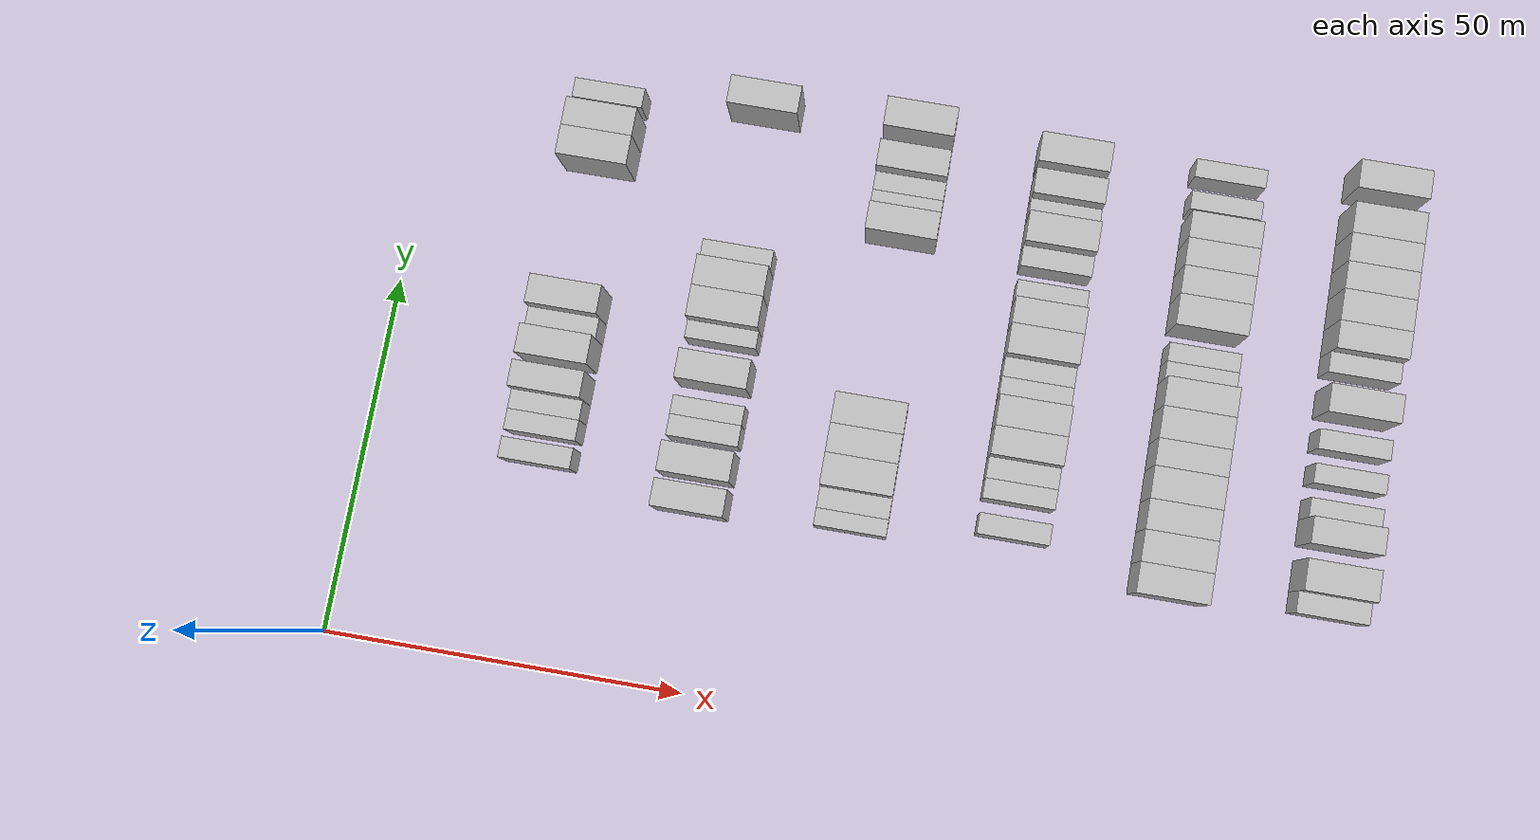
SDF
<sdf version="1.6">
 <world name="default">
  <model name="building_105">
   <static>1</static>
   <pose>25.0000 28.7900 0 0.000000 0.000000 0.000000</pose>
   <link name="link">
    <pose>0 0 3.00 0 0 0</pose>
    <collision name="collision"><geometry><box><size>10.0000 2.9071 6.0000</size></box></geometry></collision>
    <visual name="visual">
     <cast_shadows>0</cast_shadows>
     <geometry><box><size>10.0000 2.9071 6.0000</size></box></geometry>
     <material>
      <script>
       <uri>model://HANNAS_wall/materials/scripts</uri>
       <uri>model://HANNAS_wall/materials/textures</uri>
       <name>vrc/HANNAS_wall</name>
      </script>
     </material>
    </visual>
   </link>
  </model>
  <model name="building_106">
   <static>1</static>
   <pose>25.0000 32.6927 0 0.000000 0.000000 0.000000</pose>
   <link name="link">
    <pose>0 0 3.00 0 0 0</pose>
    <collision name="collision"><geometry><box><size>10.0000 2.8984 6.0000</size></box></geometry></collision>
    <visual name="visual">
     <cast_shadows>0</cast_shadows>
     <geometry><box><size>10.0000 2.8984 6.0000</size></box></geometry>
     <material>
      <script>
       <uri>model://HANNAS_wall/materials/scripts</uri>
       <uri>model://HANNAS_wall/materials/textures</uri>
       <name>vrc/HANNAS_wall</name>
      </script>
     </material>
    </visual>
   </link>
  </model>
  <model name="building_107">
   <static>1</static>
   <pose>25.0000 35.5156 0 0.000000 0.000000 0.000000</pose>
   <link name="link">
    <pose>0 0 3.00 0 0 0</pose>
    <collision name="collision"><geometry><box><size>10.0000 2.7473 6.0000</size></box></geometry></collision>
    <visual name="visual">
     <cast_shadows>0</cast_shadows>
     <geometry><box><size>10.0000 2.7473 6.0000</size></box></geometry>
     <material>
      <script>
       <uri>model://HANNAS_wall/materials/scripts</uri>
       <uri>model://HANNAS_wall/materials/textures</uri>
       <name>vrc/HANNAS_wall</name>
      </script>
     </material>
    </visual>
   </link>
  </model>
  <model name="building_108">
   <static>1</static>
   <pose>25.0000 38.7228 0 0.000000 0.000000 0.000000</pose>
   <link name="link">
    <pose>0 0 4.50 0 0 0</pose>
    <collision name="collision"><geometry><box><size>10.0000 3.6671 9.0000</size></box></geometry></collision>
    <visual name="visual">
     <cast_shadows>0</cast_shadows>
     <geometry><box><size>10.0000 3.6671 9.0000</size></box></geometry>
     <material>
      <script>
       <uri>model://HANNAS_wall/materials/scripts</uri>
       <uri>model://HANNAS_wall/materials/textures</uri>
       <name>vrc/HANNAS_wall</name>
      </script>
     </material>
    </visual>
   </link>
  </model>
  <model name="building_109">
   <static>1</static>
   <pose>25.0000 43.6012 0 0.000000 0.000000 0.000000</pose>
   <link name="link">
    <pose>0 0 4.50 0 0 0</pose>
    <collision name="collision"><geometry><box><size>10.0000 4.0897 9.0000</size></box></geometry></collision>
    <visual name="visual">
     <cast_shadows>0</cast_shadows>
     <geometry><box><size>10.0000 4.0897 9.0000</size></box></geometry>
     <material>
      <script>
       <uri>model://HANNAS_wall/materials/scripts</uri>
       <uri>model://HANNAS_wall/materials/textures</uri>
       <name>vrc/HANNAS_wall</name>
      </script>
     </material>
    </visual>
   </link>
  </model>
  <model name="building_110">
   <static>1</static>
   <pose>25.0000 47.1055 0 0.000000 0.000000 0.000000</pose>
   <link name="link">
    <pose>0 0 3.00 0 0 0</pose>
    <collision name="collision"><geometry><box><size>10.0000 2.9191 6.0000</size></box></geometry></collision>
    <visual name="visual">
     <cast_shadows>0</cast_shadows>
     <geometry><box><size>10.0000 2.9191 6.0000</size></box></geometry>
     <material>
      <script>
       <uri>model://HANNAS_wall/materials/scripts</uri>
       <uri>model://HANNAS_wall/materials/textures</uri>
       <name>vrc/HANNAS_wall</name>
      </script>
     </material>
    </visual>
   </link>
  </model>
  <model name="building_111">
   <static>1</static>
   <pose>25.0000 50.5919 0 0.000000 0.000000 0.000000</pose>
   <link name="link">
    <pose>0 0 4.50 0 0 0</pose>
    <collision name="collision"><geometry><box><size>10.0000 4.0537 9.0000</size></box></geometry></collision>
    <visual name="visual">
     <cast_shadows>0</cast_shadows>
     <geometry><box><size>10.0000 4.0537 9.0000</size></box></geometry>
     <material>
      <script>
       <uri>model://HANNAS_wall/materials/scripts</uri>
       <uri>model://HANNAS_wall/materials/textures</uri>
       <name>vrc/HANNAS_wall</name>
      </script>
     </material>
    </visual>
   </link>
  </model>
  <model name="building_112">
   <static>1</static>
   <pose>25.0000 71.9134 0 0.000000 0.000000 0.000000</pose>
   <link name="link">
    <pose>0 0 4.50 0 0 0</pose>
    <collision name="collision"><geometry><box><size>10.0000 4.1964 9.0000</size></box></geometry></collision>
    <visual name="visual">
     <cast_shadows>0</cast_shadows>
     <geometry><box><size>10.0000 4.1964 9.0000</size></box></geometry>
     <material>
      <script>
       <uri>model://HANNAS_wall/materials/scripts</uri>
       <uri>model://HANNAS_wall/materials/textures</uri>
       <name>vrc/HANNAS_wall</name>
      </script>
     </material>
    </visual>
   </link>
  </model>
  <model name="building_113">
   <static>1</static>
   <pose>25.0000 76.0172 0 0.000000 0.000000 0.000000</pose>
   <link name="link">
    <pose>0 0 4.50 0 0 0</pose>
    <collision name="collision"><geometry><box><size>10.0000 4.0112 9.0000</size></box></geometry></collision>
    <visual name="visual">
     <cast_shadows>0</cast_shadows>
     <geometry><box><size>10.0000 4.0112 9.0000</size></box></geometry>
     <material>
      <script>
       <uri>model://HANNAS_wall/materials/scripts</uri>
       <uri>model://HANNAS_wall/materials/textures</uri>
       <name>vrc/HANNAS_wall</name>
      </script>
     </material>
    </visual>
   </link>
  </model>
  <model name="building_114">
   <static>1</static>
   <pose>25.0000 80.4273 0 0.000000 0.000000 0.000000</pose>
   <link name="link">
    <pose>0 0 3.00 0 0 0</pose>
    <collision name="collision"><geometry><box><size>10.0000 2.8089 6.0000</size></box></geometry></collision>
    <visual name="visual">
     <cast_shadows>0</cast_shadows>
     <geometry><box><size>10.0000 2.8089 6.0000</size></box></geometry>
     <material>
      <script>
       <uri>model://HANNAS_wall/materials/scripts</uri>
       <uri>model://HANNAS_wall/materials/textures</uri>
       <name>vrc/HANNAS_wall</name>
      </script>
     </material>
    </visual>
   </link>
  </model>
  <model name="building_291">
   <static>1</static>
   <pose>47.0000 26.1158 0 0.000000 0.000000 0.000000</pose>
   <link name="link">
    <pose>0 0 4.50 0 0 0</pose>
    <collision name="collision"><geometry><box><size>10.0000 3.7945 9.0000</size></box></geometry></collision>
    <visual name="visual">
     <cast_shadows>0</cast_shadows>
     <geometry><box><size>10.0000 3.7945 9.0000</size></box></geometry>
     <material>
      <script>
       <uri>model://HANNAS_wall/materials/scripts</uri>
       <uri>model://HANNAS_wall/materials/textures</uri>
       <name>vrc/HANNAS_wall</name>
      </script>
     </material>
    </visual>
   </link>
  </model>
  <model name="building_292">
   <static>1</static>
   <pose>47.0000 31.0976 0 0.000000 0.000000 0.000000</pose>
   <link name="link">
    <pose>0 0 4.50 0 0 0</pose>
    <collision name="collision"><geometry><box><size>10.0000 4.1691 9.0000</size></box></geometry></collision>
    <visual name="visual">
     <cast_shadows>0</cast_shadows>
     <geometry><box><size>10.0000 4.1691 9.0000</size></box></geometry>
     <material>
      <script>
       <uri>model://HANNAS_wall/materials/scripts</uri>
       <uri>model://HANNAS_wall/materials/textures</uri>
       <name>vrc/HANNAS_wall</name>
      </script>
     </material>
    </visual>
   </link>
  </model>
  <model name="building_293">
   <static>1</static>
   <pose>47.0000 35.6731 0 0.000000 0.000000 0.000000</pose>
   <link name="link">
    <pose>0 0 3.00 0 0 0</pose>
    <collision name="collision"><geometry><box><size>10.0000 2.9821 6.0000</size></box></geometry></collision>
    <visual name="visual">
     <cast_shadows>0</cast_shadows>
     <geometry><box><size>10.0000 2.9821 6.0000</size></box></geometry>
     <material>
      <script>
       <uri>model://HANNAS_wall/materials/scripts</uri>
       <uri>model://HANNAS_wall/materials/textures</uri>
       <name>vrc/HANNAS_wall</name>
      </script>
     </material>
    </visual>
   </link>
  </model>
  <model name="building_294">
   <static>1</static>
   <pose>47.0000 38.4921 0 0.000000 0.000000 0.000000</pose>
   <link name="link">
    <pose>0 0 3.00 0 0 0</pose>
    <collision name="collision"><geometry><box><size>10.0000 2.6558 6.0000</size></box></geometry></collision>
    <visual name="visual">
     <cast_shadows>0</cast_shadows>
     <geometry><box><size>10.0000 2.6558 6.0000</size></box></geometry>
     <material>
      <script>
       <uri>model://HANNAS_wall/materials/scripts</uri>
       <uri>model://HANNAS_wall/materials/textures</uri>
       <name>vrc/HANNAS_wall</name>
      </script>
     </material>
    </visual>
   </link>
  </model>
  <model name="building_295">
   <static>1</static>
   <pose>47.0000 43.8760 0 0.000000 0.000000 0.000000</pose>
   <link name="link">
    <pose>0 0 4.50 0 0 0</pose>
    <collision name="collision"><geometry><box><size>10.0000 4.1121 9.0000</size></box></geometry></collision>
    <visual name="visual">
     <cast_shadows>0</cast_shadows>
     <geometry><box><size>10.0000 4.1121 9.0000</size></box></geometry>
     <material>
      <script>
       <uri>model://HANNAS_wall/materials/scripts</uri>
       <uri>model://HANNAS_wall/materials/textures</uri>
       <name>vrc/HANNAS_wall</name>
      </script>
     </material>
    </visual>
   </link>
  </model>
  <model name="building_296">
   <static>1</static>
   <pose>47.0000 49.1877 0 0.000000 0.000000 0.000000</pose>
   <link name="link">
    <pose>0 0 3.00 0 0 0</pose>
    <collision name="collision"><geometry><box><size>10.0000 2.5113 6.0000</size></box></geometry></collision>
    <visual name="visual">
     <cast_shadows>0</cast_shadows>
     <geometry><box><size>10.0000 2.5113 6.0000</size></box></geometry>
     <material>
      <script>
       <uri>model://HANNAS_wall/materials/scripts</uri>
       <uri>model://HANNAS_wall/materials/textures</uri>
       <name>vrc/HANNAS_wall</name>
      </script>
     </material>
    </visual>
   </link>
  </model>
  <model name="building_297">
   <static>1</static>
   <pose>47.0000 52.6473 0 0.000000 0.000000 0.000000</pose>
   <link name="link">
    <pose>0 0 4.50 0 0 0</pose>
    <collision name="collision"><geometry><box><size>10.0000 4.4078 9.0000</size></box></geometry></collision>
    <visual name="visual">
     <cast_shadows>0</cast_shadows>
     <geometry><box><size>10.0000 4.4078 9.0000</size></box></geometry>
     <material>
      <script>
       <uri>model://HANNAS_wall/materials/scripts</uri>
       <uri>model://HANNAS_wall/materials/textures</uri>
       <name>vrc/HANNAS_wall</name>
      </script>
     </material>
    </visual>
   </link>
  </model>
  <model name="building_298">
   <static>1</static>
   <pose>47.0000 56.9803 0 0.000000 0.000000 0.000000</pose>
   <link name="link">
    <pose>0 0 4.50 0 0 0</pose>
    <collision name="collision"><geometry><box><size>10.0000 4.2582 9.0000</size></box></geometry></collision>
    <visual name="visual">
     <cast_shadows>0</cast_shadows>
     <geometry><box><size>10.0000 4.2582 9.0000</size></box></geometry>
     <material>
      <script>
       <uri>model://HANNAS_wall/materials/scripts</uri>
       <uri>model://HANNAS_wall/materials/textures</uri>
       <name>vrc/HANNAS_wall</name>
      </script>
     </material>
    </visual>
   </link>
  </model>
  <model name="building_299">
   <static>1</static>
   <pose>47.0000 60.5583 0 0.000000 0.000000 0.000000</pose>
   <link name="link">
    <pose>0 0 3.00 0 0 0</pose>
    <collision name="collision"><geometry><box><size>10.0000 2.8978 6.0000</size></box></geometry></collision>
    <visual name="visual">
     <cast_shadows>0</cast_shadows>
     <geometry><box><size>10.0000 2.8978 6.0000</size></box></geometry>
     <material>
      <script>
       <uri>model://HANNAS_wall/materials/scripts</uri>
       <uri>model://HANNAS_wall/materials/textures</uri>
       <name>vrc/HANNAS_wall</name>
      </script>
     </material>
    </visual>
   </link>
  </model>
  <model name="building_300">
   <static>1</static>
   <pose>47.0000 82.9995 0 0.000000 0.000000 0.000000</pose>
   <link name="link">
    <pose>0 0 4.50 0 0 0</pose>
    <collision name="collision"><geometry><box><size>10.0000 3.9948 9.0000</size></box></geometry></collision>
    <visual name="visual">
     <cast_shadows>0</cast_shadows>
     <geometry><box><size>10.0000 3.9948 9.0000</size></box></geometry>
     <material>
      <script>
       <uri>model://HANNAS_wall/materials/scripts</uri>
       <uri>model://HANNAS_wall/materials/textures</uri>
       <name>vrc/HANNAS_wall</name>
      </script>
     </material>
    </visual>
   </link>
  </model>
  <model name="building_473">
   <static>1</static>
   <pose>69.0000 26.7193 0 0.000000 0.000000 0.000000</pose>
   <link name="link">
    <pose>0 0 3.00 0 0 0</pose>
    <collision name="collision"><geometry><box><size>10.0000 2.4017 6.0000</size></box></geometry></collision>
    <visual name="visual">
     <cast_shadows>0</cast_shadows>
     <geometry><box><size>10.0000 2.4017 6.0000</size></box></geometry>
     <material>
      <script>
       <uri>model://HANNAS_wall/materials/scripts</uri>
       <uri>model://HANNAS_wall/materials/textures</uri>
       <name>vrc/HANNAS_wall</name>
      </script>
     </material>
    </visual>
   </link>
  </model>
  <model name="building_474">
   <static>1</static>
   <pose>69.0000 29.3890 0 0.000000 0.000000 0.000000</pose>
   <link name="link">
    <pose>0 0 3.00 0 0 0</pose>
    <collision name="collision"><geometry><box><size>10.0000 2.9377 6.0000</size></box></geometry></collision>
    <visual name="visual">
     <cast_shadows>0</cast_shadows>
     <geometry><box><size>10.0000 2.9377 6.0000</size></box></geometry>
     <material>
      <script>
       <uri>model://HANNAS_wall/materials/scripts</uri>
       <uri>model://HANNAS_wall/materials/textures</uri>
       <name>vrc/HANNAS_wall</name>
      </script>
     </material>
    </visual>
   </link>
  </model>
  <model name="building_475">
   <static>1</static>
   <pose>69.0000 33.0893 0 0.000000 0.000000 0.000000</pose>
   <link name="link">
    <pose>0 0 4.50 0 0 0</pose>
    <collision name="collision"><geometry><box><size>10.0000 4.4629 9.0000</size></box></geometry></collision>
    <visual name="visual">
     <cast_shadows>0</cast_shadows>
     <geometry><box><size>10.0000 4.4629 9.0000</size></box></geometry>
     <material>
      <script>
       <uri>model://HANNAS_wall/materials/scripts</uri>
       <uri>model://HANNAS_wall/materials/textures</uri>
       <name>vrc/HANNAS_wall</name>
      </script>
     </material>
    </visual>
   </link>
  </model>
  <model name="building_476">
   <static>1</static>
   <pose>69.0000 37.3392 0 0.000000 0.000000 0.000000</pose>
   <link name="link">
    <pose>0 0 4.50 0 0 0</pose>
    <collision name="collision"><geometry><box><size>10.0000 4.0368 9.0000</size></box></geometry></collision>
    <visual name="visual">
     <cast_shadows>0</cast_shadows>
     <geometry><box><size>10.0000 4.0368 9.0000</size></box></geometry>
     <material>
      <script>
       <uri>model://HANNAS_wall/materials/scripts</uri>
       <uri>model://HANNAS_wall/materials/textures</uri>
       <name>vrc/HANNAS_wall</name>
      </script>
     </material>
    </visual>
   </link>
  </model>
  <model name="building_477">
   <static>1</static>
   <pose>69.0000 41.5137 0 0.000000 0.000000 0.000000</pose>
   <link name="link">
    <pose>0 0 4.50 0 0 0</pose>
    <collision name="collision"><geometry><box><size>10.0000 4.3124 9.0000</size></box></geometry></collision>
    <visual name="visual">
     <cast_shadows>0</cast_shadows>
     <geometry><box><size>10.0000 4.3124 9.0000</size></box></geometry>
     <material>
      <script>
       <uri>model://HANNAS_wall/materials/scripts</uri>
       <uri>model://HANNAS_wall/materials/textures</uri>
       <name>vrc/HANNAS_wall</name>
      </script>
     </material>
    </visual>
   </link>
  </model>
  <model name="building_478">
   <static>1</static>
   <pose>69.0000 68.5739 0 0.000000 0.000000 0.000000</pose>
   <link name="link">
    <pose>0 0 4.50 0 0 0</pose>
    <collision name="collision"><geometry><box><size>10.0000 3.9360 9.0000</size></box></geometry></collision>
    <visual name="visual">
     <cast_shadows>0</cast_shadows>
     <geometry><box><size>10.0000 3.9360 9.0000</size></box></geometry>
     <material>
      <script>
       <uri>model://HANNAS_wall/materials/scripts</uri>
       <uri>model://HANNAS_wall/materials/textures</uri>
       <name>vrc/HANNAS_wall</name>
      </script>
     </material>
    </visual>
   </link>
  </model>
  <model name="building_479">
   <static>1</static>
   <pose>69.0000 71.7526 0 0.000000 0.000000 0.000000</pose>
   <link name="link">
    <pose>0 0 3.00 0 0 0</pose>
    <collision name="collision"><geometry><box><size>10.0000 2.4214 6.0000</size></box></geometry></collision>
    <visual name="visual">
     <cast_shadows>0</cast_shadows>
     <geometry><box><size>10.0000 2.4214 6.0000</size></box></geometry>
     <material>
      <script>
       <uri>model://HANNAS_wall/materials/scripts</uri>
       <uri>model://HANNAS_wall/materials/textures</uri>
       <name>vrc/HANNAS_wall</name>
      </script>
     </material>
    </visual>
   </link>
  </model>
  <model name="building_480">
   <static>1</static>
   <pose>69.0000 74.2943 0 0.000000 0.000000 0.000000</pose>
   <link name="link">
    <pose>0 0 3.00 0 0 0</pose>
    <collision name="collision"><geometry><box><size>10.0000 2.6619 6.0000</size></box></geometry></collision>
    <visual name="visual">
     <cast_shadows>0</cast_shadows>
     <geometry><box><size>10.0000 2.6619 6.0000</size></box></geometry>
     <material>
      <script>
       <uri>model://HANNAS_wall/materials/scripts</uri>
       <uri>model://HANNAS_wall/materials/textures</uri>
       <name>vrc/HANNAS_wall</name>
      </script>
     </material>
    </visual>
   </link>
  </model>
  <model name="building_481">
   <static>1</static>
   <pose>69.0000 77.5490 0 0.000000 0.000000 0.000000</pose>
   <link name="link">
    <pose>0 0 4.50 0 0 0</pose>
    <collision name="collision"><geometry><box><size>10.0000 3.8476 9.0000</size></box></geometry></collision>
    <visual name="visual">
     <cast_shadows>0</cast_shadows>
     <geometry><box><size>10.0000 3.8476 9.0000</size></box></geometry>
     <material>
      <script>
       <uri>model://HANNAS_wall/materials/scripts</uri>
       <uri>model://HANNAS_wall/materials/textures</uri>
       <name>vrc/HANNAS_wall</name>
      </script>
     </material>
    </visual>
   </link>
  </model>
  <model name="building_482">
   <static>1</static>
   <pose>69.0000 83.5803 0 0.000000 0.000000 0.000000</pose>
   <link name="link">
    <pose>0 0 4.50 0 0 0</pose>
    <collision name="collision"><geometry><box><size>10.0000 4.2150 9.0000</size></box></geometry></collision>
    <visual name="visual">
     <cast_shadows>0</cast_shadows>
     <geometry><box><size>10.0000 4.2150 9.0000</size></box></geometry>
     <material>
      <script>
       <uri>model://HANNAS_wall/materials/scripts</uri>
       <uri>model://HANNAS_wall/materials/textures</uri>
       <name>vrc/HANNAS_wall</name>
      </script>
     </material>
    </visual>
   </link>
  </model>
  <model name="building_658">
   <static>1</static>
   <pose>91.0000 29.5985 0 0.000000 0.000000 0.000000</pose>
   <link name="link">
    <pose>0 0 3.00 0 0 0</pose>
    <collision name="collision"><geometry><box><size>10.0000 2.9148 6.0000</size></box></geometry></collision>
    <visual name="visual">
     <cast_shadows>0</cast_shadows>
     <geometry><box><size>10.0000 2.9148 6.0000</size></box></geometry>
     <material>
      <script>
       <uri>model://HANNAS_wall/materials/scripts</uri>
       <uri>model://HANNAS_wall/materials/textures</uri>
       <name>vrc/HANNAS_wall</name>
      </script>
     </material>
    </visual>
   </link>
  </model>
  <model name="building_659">
   <static>1</static>
   <pose>91.0000 34.4473 0 0.000000 0.000000 0.000000</pose>
   <link name="link">
    <pose>0 0 3.00 0 0 0</pose>
    <collision name="collision"><geometry><box><size>10.0000 2.7828 6.0000</size></box></geometry></collision>
    <visual name="visual">
     <cast_shadows>0</cast_shadows>
     <geometry><box><size>10.0000 2.7828 6.0000</size></box></geometry>
     <material>
      <script>
       <uri>model://HANNAS_wall/materials/scripts</uri>
       <uri>model://HANNAS_wall/materials/textures</uri>
       <name>vrc/HANNAS_wall</name>
      </script>
     </material>
    </visual>
   </link>
  </model>
  <model name="building_660">
   <static>1</static>
   <pose>91.0000 37.3197 0 0.000000 0.000000 0.000000</pose>
   <link name="link">
    <pose>0 0 3.00 0 0 0</pose>
    <collision name="collision"><geometry><box><size>10.0000 2.9619 6.0000</size></box></geometry></collision>
    <visual name="visual">
     <cast_shadows>0</cast_shadows>
     <geometry><box><size>10.0000 2.9619 6.0000</size></box></geometry>
     <material>
      <script>
       <uri>model://HANNAS_wall/materials/scripts</uri>
       <uri>model://HANNAS_wall/materials/textures</uri>
       <name>vrc/HANNAS_wall</name>
      </script>
     </material>
    </visual>
   </link>
  </model>
  <model name="building_661">
   <static>1</static>
   <pose>91.0000 40.8022 0 0.000000 0.000000 0.000000</pose>
   <link name="link">
    <pose>0 0 4.50 0 0 0</pose>
    <collision name="collision"><geometry><box><size>10.0000 4.0031 9.0000</size></box></geometry></collision>
    <visual name="visual">
     <cast_shadows>0</cast_shadows>
     <geometry><box><size>10.0000 4.0031 9.0000</size></box></geometry>
     <material>
      <script>
       <uri>model://HANNAS_wall/materials/scripts</uri>
       <uri>model://HANNAS_wall/materials/textures</uri>
       <name>vrc/HANNAS_wall</name>
      </script>
     </material>
    </visual>
   </link>
  </model>
  <model name="building_662">
   <static>1</static>
   <pose>91.0000 44.9374 0 0.000000 0.000000 0.000000</pose>
   <link name="link">
    <pose>0 0 4.50 0 0 0</pose>
    <collision name="collision"><geometry><box><size>10.0000 4.2671 9.0000</size></box></geometry></collision>
    <visual name="visual">
     <cast_shadows>0</cast_shadows>
     <geometry><box><size>10.0000 4.2671 9.0000</size></box></geometry>
     <material>
      <script>
       <uri>model://HANNAS_wall/materials/scripts</uri>
       <uri>model://HANNAS_wall/materials/textures</uri>
       <name>vrc/HANNAS_wall</name>
      </script>
     </material>
    </visual>
   </link>
  </model>
  <model name="building_663">
   <static>1</static>
   <pose>91.0000 48.5346 0 0.000000 0.000000 0.000000</pose>
   <link name="link">
    <pose>0 0 3.00 0 0 0</pose>
    <collision name="collision"><geometry><box><size>10.0000 2.9274 6.0000</size></box></geometry></collision>
    <visual name="visual">
     <cast_shadows>0</cast_shadows>
     <geometry><box><size>10.0000 2.9274 6.0000</size></box></geometry>
     <material>
      <script>
       <uri>model://HANNAS_wall/materials/scripts</uri>
       <uri>model://HANNAS_wall/materials/textures</uri>
       <name>vrc/HANNAS_wall</name>
      </script>
     </material>
    </visual>
   </link>
  </model>
  <model name="building_664">
   <static>1</static>
   <pose>91.0000 51.3972 0 0.000000 0.000000 0.000000</pose>
   <link name="link">
    <pose>0 0 3.00 0 0 0</pose>
    <collision name="collision"><geometry><box><size>10.0000 2.7978 6.0000</size></box></geometry></collision>
    <visual name="visual">
     <cast_shadows>0</cast_shadows>
     <geometry><box><size>10.0000 2.7978 6.0000</size></box></geometry>
     <material>
      <script>
       <uri>model://HANNAS_wall/materials/scripts</uri>
       <uri>model://HANNAS_wall/materials/textures</uri>
       <name>vrc/HANNAS_wall</name>
      </script>
     </material>
    </visual>
   </link>
  </model>
  <model name="building_665">
   <static>1</static>
   <pose>91.0000 54.9342 0 0.000000 0.000000 0.000000</pose>
   <link name="link">
    <pose>0 0 4.50 0 0 0</pose>
    <collision name="collision"><geometry><box><size>10.0000 4.2761 9.0000</size></box></geometry></collision>
    <visual name="visual">
     <cast_shadows>0</cast_shadows>
     <geometry><box><size>10.0000 4.2761 9.0000</size></box></geometry>
     <material>
      <script>
       <uri>model://HANNAS_wall/materials/scripts</uri>
       <uri>model://HANNAS_wall/materials/textures</uri>
       <name>vrc/HANNAS_wall</name>
      </script>
     </material>
    </visual>
   </link>
  </model>
  <model name="building_666">
   <static>1</static>
   <pose>91.0000 58.9236 0 0.000000 0.000000 0.000000</pose>
   <link name="link">
    <pose>0 0 4.50 0 0 0</pose>
    <collision name="collision"><geometry><box><size>10.0000 3.7027 9.0000</size></box></geometry></collision>
    <visual name="visual">
     <cast_shadows>0</cast_shadows>
     <geometry><box><size>10.0000 3.7027 9.0000</size></box></geometry>
     <material>
      <script>
       <uri>model://HANNAS_wall/materials/scripts</uri>
       <uri>model://HANNAS_wall/materials/textures</uri>
       <name>vrc/HANNAS_wall</name>
      </script>
     </material>
    </visual>
   </link>
  </model>
  <model name="building_667">
   <static>1</static>
   <pose>91.0000 62.2617 0 0.000000 0.000000 0.000000</pose>
   <link name="link">
    <pose>0 0 3.00 0 0 0</pose>
    <collision name="collision"><geometry><box><size>10.0000 2.9735 6.0000</size></box></geometry></collision>
    <visual name="visual">
     <cast_shadows>0</cast_shadows>
     <geometry><box><size>10.0000 2.9735 6.0000</size></box></geometry>
     <material>
      <script>
       <uri>model://HANNAS_wall/materials/scripts</uri>
       <uri>model://HANNAS_wall/materials/textures</uri>
       <name>vrc/HANNAS_wall</name>
      </script>
     </material>
    </visual>
   </link>
  </model>
  <model name="building_668">
   <static>1</static>
   <pose>91.0000 67.1979 0 0.000000 0.000000 0.000000</pose>
   <link name="link">
    <pose>0 0 3.00 0 0 0</pose>
    <collision name="collision"><geometry><box><size>10.0000 2.8990 6.0000</size></box></geometry></collision>
    <visual name="visual">
     <cast_shadows>0</cast_shadows>
     <geometry><box><size>10.0000 2.8990 6.0000</size></box></geometry>
     <material>
      <script>
       <uri>model://HANNAS_wall/materials/scripts</uri>
       <uri>model://HANNAS_wall/materials/textures</uri>
       <name>vrc/HANNAS_wall</name>
      </script>
     </material>
    </visual>
   </link>
  </model>
  <model name="building_669">
   <static>1</static>
   <pose>91.0000 70.8143 0 0.000000 0.000000 0.000000</pose>
   <link name="link">
    <pose>0 0 4.50 0 0 0</pose>
    <collision name="collision"><geometry><box><size>10.0000 4.3337 9.0000</size></box></geometry></collision>
    <visual name="visual">
     <cast_shadows>0</cast_shadows>
     <geometry><box><size>10.0000 4.3337 9.0000</size></box></geometry>
     <material>
      <script>
       <uri>model://HANNAS_wall/materials/scripts</uri>
       <uri>model://HANNAS_wall/materials/textures</uri>
       <name>vrc/HANNAS_wall</name>
      </script>
     </material>
    </visual>
   </link>
  </model>
  <model name="building_670">
   <static>1</static>
   <pose>91.0000 74.2350 0 0.000000 0.000000 0.000000</pose>
   <link name="link">
    <pose>0 0 3.00 0 0 0</pose>
    <collision name="collision"><geometry><box><size>10.0000 2.5077 6.0000</size></box></geometry></collision>
    <visual name="visual">
     <cast_shadows>0</cast_shadows>
     <geometry><box><size>10.0000 2.5077 6.0000</size></box></geometry>
     <material>
      <script>
       <uri>model://HANNAS_wall/materials/scripts</uri>
       <uri>model://HANNAS_wall/materials/textures</uri>
       <name>vrc/HANNAS_wall</name>
      </script>
     </material>
    </visual>
   </link>
  </model>
  <model name="building_671">
   <static>1</static>
   <pose>91.0000 77.3013 0 0.000000 0.000000 0.000000</pose>
   <link name="link">
    <pose>0 0 4.50 0 0 0</pose>
    <collision name="collision"><geometry><box><size>10.0000 3.6250 9.0000</size></box></geometry></collision>
    <visual name="visual">
     <cast_shadows>0</cast_shadows>
     <geometry><box><size>10.0000 3.6250 9.0000</size></box></geometry>
     <material>
      <script>
       <uri>model://HANNAS_wall/materials/scripts</uri>
       <uri>model://HANNAS_wall/materials/textures</uri>
       <name>vrc/HANNAS_wall</name>
      </script>
     </material>
    </visual>
   </link>
  </model>
  <model name="building_672">
   <static>1</static>
   <pose>91.0000 82.2211 0 0.000000 0.000000 0.000000</pose>
   <link name="link">
    <pose>0 0 4.50 0 0 0</pose>
    <collision name="collision"><geometry><box><size>10.0000 4.2145 9.0000</size></box></geometry></collision>
    <visual name="visual">
     <cast_shadows>0</cast_shadows>
     <geometry><box><size>10.0000 4.2145 9.0000</size></box></geometry>
     <material>
      <script>
       <uri>model://HANNAS_wall/materials/scripts</uri>
       <uri>model://HANNAS_wall/materials/textures</uri>
       <name>vrc/HANNAS_wall</name>
      </script>
     </material>
    </visual>
   </link>
  </model>
  <model name="building_848">
   <static>1</static>
   <pose>113.0000 25.8924 0 0.000000 0.000000 0.000000</pose>
   <link name="link">
    <pose>0 0 4.50 0 0 0</pose>
    <collision name="collision"><geometry><box><size>10.0000 4.2222 9.0000</size></box></geometry></collision>
    <visual name="visual">
     <cast_shadows>0</cast_shadows>
     <geometry><box><size>10.0000 4.2222 9.0000</size></box></geometry>
     <material>
      <script>
       <uri>model://HANNAS_wall/materials/scripts</uri>
       <uri>model://HANNAS_wall/materials/textures</uri>
       <name>vrc/HANNAS_wall</name>
      </script>
     </material>
    </visual>
   </link>
  </model>
  <model name="building_849">
   <static>1</static>
   <pose>113.0000 30.1855 0 0.000000 0.000000 0.000000</pose>
   <link name="link">
    <pose>0 0 4.50 0 0 0</pose>
    <collision name="collision"><geometry><box><size>10.0000 4.3639 9.0000</size></box></geometry></collision>
    <visual name="visual">
     <cast_shadows>0</cast_shadows>
     <geometry><box><size>10.0000 4.3639 9.0000</size></box></geometry>
     <material>
      <script>
       <uri>model://HANNAS_wall/materials/scripts</uri>
       <uri>model://HANNAS_wall/materials/textures</uri>
       <name>vrc/HANNAS_wall</name>
      </script>
     </material>
    </visual>
   </link>
  </model>
  <model name="building_850">
   <static>1</static>
   <pose>113.0000 34.4704 0 0.000000 0.000000 0.000000</pose>
   <link name="link">
    <pose>0 0 4.50 0 0 0</pose>
    <collision name="collision"><geometry><box><size>10.0000 4.2058 9.0000</size></box></geometry></collision>
    <visual name="visual">
     <cast_shadows>0</cast_shadows>
     <geometry><box><size>10.0000 4.2058 9.0000</size></box></geometry>
     <material>
      <script>
       <uri>model://HANNAS_wall/materials/scripts</uri>
       <uri>model://HANNAS_wall/materials/textures</uri>
       <name>vrc/HANNAS_wall</name>
      </script>
     </material>
    </visual>
   </link>
  </model>
  <model name="building_851">
   <static>1</static>
   <pose>113.0000 38.8074 0 0.000000 0.000000 0.000000</pose>
   <link name="link">
    <pose>0 0 4.50 0 0 0</pose>
    <collision name="collision"><geometry><box><size>10.0000 4.4682 9.0000</size></box></geometry></collision>
    <visual name="visual">
     <cast_shadows>0</cast_shadows>
     <geometry><box><size>10.0000 4.4682 9.0000</size></box></geometry>
     <material>
      <script>
       <uri>model://HANNAS_wall/materials/scripts</uri>
       <uri>model://HANNAS_wall/materials/textures</uri>
       <name>vrc/HANNAS_wall</name>
      </script>
     </material>
    </visual>
   </link>
  </model>
  <model name="building_852">
   <static>1</static>
   <pose>113.0000 42.9378 0 0.000000 0.000000 0.000000</pose>
   <link name="link">
    <pose>0 0 4.50 0 0 0</pose>
    <collision name="collision"><geometry><box><size>10.0000 3.7927 9.0000</size></box></geometry></collision>
    <visual name="visual">
     <cast_shadows>0</cast_shadows>
     <geometry><box><size>10.0000 3.7927 9.0000</size></box></geometry>
     <material>
      <script>
       <uri>model://HANNAS_wall/materials/scripts</uri>
       <uri>model://HANNAS_wall/materials/textures</uri>
       <name>vrc/HANNAS_wall</name>
      </script>
     </material>
    </visual>
   </link>
  </model>
  <model name="building_853">
   <static>1</static>
   <pose>113.0000 47.0565 0 0.000000 0.000000 0.000000</pose>
   <link name="link">
    <pose>0 0 4.50 0 0 0</pose>
    <collision name="collision"><geometry><box><size>10.0000 4.4446 9.0000</size></box></geometry></collision>
    <visual name="visual">
     <cast_shadows>0</cast_shadows>
     <geometry><box><size>10.0000 4.4446 9.0000</size></box></geometry>
     <material>
      <script>
       <uri>model://HANNAS_wall/materials/scripts</uri>
       <uri>model://HANNAS_wall/materials/textures</uri>
       <name>vrc/HANNAS_wall</name>
      </script>
     </material>
    </visual>
   </link>
  </model>
  <model name="building_854">
   <static>1</static>
   <pose>113.0000 51.3348 0 0.000000 0.000000 0.000000</pose>
   <link name="link">
    <pose>0 0 4.50 0 0 0</pose>
    <collision name="collision"><geometry><box><size>10.0000 4.1121 9.0000</size></box></geometry></collision>
    <visual name="visual">
     <cast_shadows>0</cast_shadows>
     <geometry><box><size>10.0000 4.1121 9.0000</size></box></geometry>
     <material>
      <script>
       <uri>model://HANNAS_wall/materials/scripts</uri>
       <uri>model://HANNAS_wall/materials/textures</uri>
       <name>vrc/HANNAS_wall</name>
      </script>
     </material>
    </visual>
   </link>
  </model>
  <model name="building_855">
   <static>1</static>
   <pose>113.0000 54.6623 0 0.000000 0.000000 0.000000</pose>
   <link name="link">
    <pose>0 0 3.00 0 0 0</pose>
    <collision name="collision"><geometry><box><size>10.0000 2.5429 6.0000</size></box></geometry></collision>
    <visual name="visual">
     <cast_shadows>0</cast_shadows>
     <geometry><box><size>10.0000 2.5429 6.0000</size></box></geometry>
     <material>
      <script>
       <uri>model://HANNAS_wall/materials/scripts</uri>
       <uri>model://HANNAS_wall/materials/textures</uri>
       <name>vrc/HANNAS_wall</name>
      </script>
     </material>
    </visual>
   </link>
  </model>
  <model name="building_856">
   <static>1</static>
   <pose>113.0000 57.2573 0 0.000000 0.000000 0.000000</pose>
   <link name="link">
    <pose>0 0 3.00 0 0 0</pose>
    <collision name="collision"><geometry><box><size>10.0000 2.6470 6.0000</size></box></geometry></collision>
    <visual name="visual">
     <cast_shadows>0</cast_shadows>
     <geometry><box><size>10.0000 2.6470 6.0000</size></box></geometry>
     <material>
      <script>
       <uri>model://HANNAS_wall/materials/scripts</uri>
       <uri>model://HANNAS_wall/materials/textures</uri>
       <name>vrc/HANNAS_wall</name>
      </script>
     </material>
    </visual>
   </link>
  </model>
  <model name="building_857">
   <static>1</static>
   <pose>113.0000 62.7747 0 0.000000 0.000000 0.000000</pose>
   <link name="link">
    <pose>0 0 4.50 0 0 0</pose>
    <collision name="collision"><geometry><box><size>10.0000 4.3878 9.0000</size></box></geometry></collision>
    <visual name="visual">
     <cast_shadows>0</cast_shadows>
     <geometry><box><size>10.0000 4.3878 9.0000</size></box></geometry>
     <material>
      <script>
       <uri>model://HANNAS_wall/materials/scripts</uri>
       <uri>model://HANNAS_wall/materials/textures</uri>
       <name>vrc/HANNAS_wall</name>
      </script>
     </material>
    </visual>
   </link>
  </model>
  <model name="building_858">
   <static>1</static>
   <pose>113.0000 66.9671 0 0.000000 0.000000 0.000000</pose>
   <link name="link">
    <pose>0 0 4.50 0 0 0</pose>
    <collision name="collision"><geometry><box><size>10.0000 3.9969 9.0000</size></box></geometry></collision>
    <visual name="visual">
     <cast_shadows>0</cast_shadows>
     <geometry><box><size>10.0000 3.9969 9.0000</size></box></geometry>
     <material>
      <script>
       <uri>model://HANNAS_wall/materials/scripts</uri>
       <uri>model://HANNAS_wall/materials/textures</uri>
       <name>vrc/HANNAS_wall</name>
      </script>
     </material>
    </visual>
   </link>
  </model>
  <model name="building_859">
   <static>1</static>
   <pose>113.0000 70.9345 0 0.000000 0.000000 0.000000</pose>
   <link name="link">
    <pose>0 0 4.50 0 0 0</pose>
    <collision name="collision"><geometry><box><size>10.0000 3.9379 9.0000</size></box></geometry></collision>
    <visual name="visual">
     <cast_shadows>0</cast_shadows>
     <geometry><box><size>10.0000 3.9379 9.0000</size></box></geometry>
     <material>
      <script>
       <uri>model://HANNAS_wall/materials/scripts</uri>
       <uri>model://HANNAS_wall/materials/textures</uri>
       <name>vrc/HANNAS_wall</name>
      </script>
     </material>
    </visual>
   </link>
  </model>
  <model name="building_860">
   <static>1</static>
   <pose>113.0000 74.8134 0 0.000000 0.000000 0.000000</pose>
   <link name="link">
    <pose>0 0 4.50 0 0 0</pose>
    <collision name="collision"><geometry><box><size>10.0000 3.8198 9.0000</size></box></geometry></collision>
    <visual name="visual">
     <cast_shadows>0</cast_shadows>
     <geometry><box><size>10.0000 3.8198 9.0000</size></box></geometry>
     <material>
      <script>
       <uri>model://HANNAS_wall/materials/scripts</uri>
       <uri>model://HANNAS_wall/materials/textures</uri>
       <name>vrc/HANNAS_wall</name>
      </script>
     </material>
    </visual>
   </link>
  </model>
  <model name="building_861">
   <static>1</static>
   <pose>113.0000 79.0481 0 0.000000 0.000000 0.000000</pose>
   <link name="link">
    <pose>0 0 3.00 0 0 0</pose>
    <collision name="collision"><geometry><box><size>10.0000 2.6496 6.0000</size></box></geometry></collision>
    <visual name="visual">
     <cast_shadows>0</cast_shadows>
     <geometry><box><size>10.0000 2.6496 6.0000</size></box></geometry>
     <material>
      <script>
       <uri>model://HANNAS_wall/materials/scripts</uri>
       <uri>model://HANNAS_wall/materials/textures</uri>
       <name>vrc/HANNAS_wall</name>
      </script>
     </material>
    </visual>
   </link>
  </model>
  <model name="building_862">
   <static>1</static>
   <pose>113.0000 83.6814 0 0.000000 0.000000 0.000000</pose>
   <link name="link">
    <pose>0 0 3.00 0 0 0</pose>
    <collision name="collision"><geometry><box><size>10.0000 2.6170 6.0000</size></box></geometry></collision>
    <visual name="visual">
     <cast_shadows>0</cast_shadows>
     <geometry><box><size>10.0000 2.6170 6.0000</size></box></geometry>
     <material>
      <script>
       <uri>model://HANNAS_wall/materials/scripts</uri>
       <uri>model://HANNAS_wall/materials/textures</uri>
       <name>vrc/HANNAS_wall</name>
      </script>
     </material>
    </visual>
   </link>
  </model>
  <model name="building_1025">
   <static>1</static>
   <pose>135.0000 26.3889 0 0.000000 0.000000 0.000000</pose>
   <link name="link">
    <pose>0 0 3.00 0 0 0</pose>
    <collision name="collision"><geometry><box><size>10.0000 2.9974 6.0000</size></box></geometry></collision>
    <visual name="visual">
     <cast_shadows>0</cast_shadows>
     <geometry><box><size>10.0000 2.9974 6.0000</size></box></geometry>
     <material>
      <script>
       <uri>model://HANNAS_wall/materials/scripts</uri>
       <uri>model://HANNAS_wall/materials/textures</uri>
       <name>vrc/HANNAS_wall</name>
      </script>
     </material>
    </visual>
   </link>
  </model>
  <model name="building_1026">
   <static>1</static>
   <pose>135.0000 30.0514 0 0.000000 0.000000 0.000000</pose>
   <link name="link">
    <pose>0 0 4.50 0 0 0</pose>
    <collision name="collision"><geometry><box><size>10.0000 4.3277 9.0000</size></box></geometry></collision>
    <visual name="visual">
     <cast_shadows>0</cast_shadows>
     <geometry><box><size>10.0000 4.3277 9.0000</size></box></geometry>
     <material>
      <script>
       <uri>model://HANNAS_wall/materials/scripts</uri>
       <uri>model://HANNAS_wall/materials/textures</uri>
       <name>vrc/HANNAS_wall</name>
      </script>
     </material>
    </visual>
   </link>
  </model>
  <model name="building_1027">
   <static>1</static>
   <pose>135.0000 36.0726 0 0.000000 0.000000 0.000000</pose>
   <link name="link">
    <pose>0 0 4.50 0 0 0</pose>
    <collision name="collision"><geometry><box><size>10.0000 3.7148 9.0000</size></box></geometry></collision>
    <visual name="visual">
     <cast_shadows>0</cast_shadows>
     <geometry><box><size>10.0000 3.7148 9.0000</size></box></geometry>
     <material>
      <script>
       <uri>model://HANNAS_wall/materials/scripts</uri>
       <uri>model://HANNAS_wall/materials/textures</uri>
       <name>vrc/HANNAS_wall</name>
      </script>
     </material>
    </visual>
   </link>
  </model>
  <model name="building_1028">
   <static>1</static>
   <pose>135.0000 39.3070 0 0.000000 0.000000 0.000000</pose>
   <link name="link">
    <pose>0 0 3.00 0 0 0</pose>
    <collision name="collision"><geometry><box><size>10.0000 2.7539 6.0000</size></box></geometry></collision>
    <visual name="visual">
     <cast_shadows>0</cast_shadows>
     <geometry><box><size>10.0000 2.7539 6.0000</size></box></geometry>
     <material>
      <script>
       <uri>model://HANNAS_wall/materials/scripts</uri>
       <uri>model://HANNAS_wall/materials/textures</uri>
       <name>vrc/HANNAS_wall</name>
      </script>
     </material>
    </visual>
   </link>
  </model>
  <model name="building_1029">
   <static>1</static>
   <pose>135.0000 44.0614 0 0.000000 0.000000 0.000000</pose>
   <link name="link">
    <pose>0 0 3.00 0 0 0</pose>
    <collision name="collision"><geometry><box><size>10.0000 2.7550 6.0000</size></box></geometry></collision>
    <visual name="visual">
     <cast_shadows>0</cast_shadows>
     <geometry><box><size>10.0000 2.7550 6.0000</size></box></geometry>
     <material>
      <script>
       <uri>model://HANNAS_wall/materials/scripts</uri>
       <uri>model://HANNAS_wall/materials/textures</uri>
       <name>vrc/HANNAS_wall</name>
      </script>
     </material>
    </visual>
   </link>
  </model>
  <model name="building_1030">
   <static>1</static>
   <pose>135.0000 48.8277 0 0.000000 0.000000 0.000000</pose>
   <link name="link">
    <pose>0 0 3.00 0 0 0</pose>
    <collision name="collision"><geometry><box><size>10.0000 2.7776 6.0000</size></box></geometry></collision>
    <visual name="visual">
     <cast_shadows>0</cast_shadows>
     <geometry><box><size>10.0000 2.7776 6.0000</size></box></geometry>
     <material>
      <script>
       <uri>model://HANNAS_wall/materials/scripts</uri>
       <uri>model://HANNAS_wall/materials/textures</uri>
       <name>vrc/HANNAS_wall</name>
      </script>
     </material>
    </visual>
   </link>
  </model>
  <model name="building_1031">
   <static>1</static>
   <pose>135.0000 54.1965 0 0.000000 0.000000 0.000000</pose>
   <link name="link">
    <pose>0 0 4.50 0 0 0</pose>
    <collision name="collision"><geometry><box><size>10.0000 3.9598 9.0000</size></box></geometry></collision>
    <visual name="visual">
     <cast_shadows>0</cast_shadows>
     <geometry><box><size>10.0000 3.9598 9.0000</size></box></geometry>
     <material>
      <script>
       <uri>model://HANNAS_wall/materials/scripts</uri>
       <uri>model://HANNAS_wall/materials/textures</uri>
       <name>vrc/HANNAS_wall</name>
      </script>
     </material>
    </visual>
   </link>
  </model>
  <model name="building_1032">
   <static>1</static>
   <pose>135.0000 59.6215 0 0.000000 0.000000 0.000000</pose>
   <link name="link">
    <pose>0 0 3.00 0 0 0</pose>
    <collision name="collision"><geometry><box><size>10.0000 2.8903 6.0000</size></box></geometry></collision>
    <visual name="visual">
     <cast_shadows>0</cast_shadows>
     <geometry><box><size>10.0000 2.8903 6.0000</size></box></geometry>
     <material>
      <script>
       <uri>model://HANNAS_wall/materials/scripts</uri>
       <uri>model://HANNAS_wall/materials/textures</uri>
       <name>vrc/HANNAS_wall</name>
      </script>
     </material>
    </visual>
   </link>
  </model>
  <model name="building_1033">
   <static>1</static>
   <pose>135.0000 63.0238 0 0.000000 0.000000 0.000000</pose>
   <link name="link">
    <pose>0 0 4.50 0 0 0</pose>
    <collision name="collision"><geometry><box><size>10.0000 3.9143 9.0000</size></box></geometry></collision>
    <visual name="visual">
     <cast_shadows>0</cast_shadows>
     <geometry><box><size>10.0000 3.9143 9.0000</size></box></geometry>
     <material>
      <script>
       <uri>model://HANNAS_wall/materials/scripts</uri>
       <uri>model://HANNAS_wall/materials/textures</uri>
       <name>vrc/HANNAS_wall</name>
      </script>
     </material>
    </visual>
   </link>
  </model>
  <model name="building_1034">
   <static>1</static>
   <pose>135.0000 67.2039 0 0.000000 0.000000 0.000000</pose>
   <link name="link">
    <pose>0 0 4.50 0 0 0</pose>
    <collision name="collision"><geometry><box><size>10.0000 4.4460 9.0000</size></box></geometry></collision>
    <visual name="visual">
     <cast_shadows>0</cast_shadows>
     <geometry><box><size>10.0000 4.4460 9.0000</size></box></geometry>
     <material>
      <script>
       <uri>model://HANNAS_wall/materials/scripts</uri>
       <uri>model://HANNAS_wall/materials/textures</uri>
       <name>vrc/HANNAS_wall</name>
      </script>
     </material>
    </visual>
   </link>
  </model>
  <model name="building_1035">
   <static>1</static>
   <pose>135.0000 71.3794 0 0.000000 0.000000 0.000000</pose>
   <link name="link">
    <pose>0 0 4.50 0 0 0</pose>
    <collision name="collision"><geometry><box><size>10.0000 3.9050 9.0000</size></box></geometry></collision>
    <visual name="visual">
     <cast_shadows>0</cast_shadows>
     <geometry><box><size>10.0000 3.9050 9.0000</size></box></geometry>
     <material>
      <script>
       <uri>model://HANNAS_wall/materials/scripts</uri>
       <uri>model://HANNAS_wall/materials/textures</uri>
       <name>vrc/HANNAS_wall</name>
      </script>
     </material>
    </visual>
   </link>
  </model>
  <model name="building_1036">
   <static>1</static>
   <pose>135.0000 75.3521 0 0.000000 0.000000 0.000000</pose>
   <link name="link">
    <pose>0 0 4.50 0 0 0</pose>
    <collision name="collision"><geometry><box><size>10.0000 4.0404 9.0000</size></box></geometry></collision>
    <visual name="visual">
     <cast_shadows>0</cast_shadows>
     <geometry><box><size>10.0000 4.0404 9.0000</size></box></geometry>
     <material>
      <script>
       <uri>model://HANNAS_wall/materials/scripts</uri>
       <uri>model://HANNAS_wall/materials/textures</uri>
       <name>vrc/HANNAS_wall</name>
      </script>
     </material>
    </visual>
   </link>
  </model>
  <model name="building_1037">
   <static>1</static>
   <pose>135.0000 79.5905 0 0.000000 0.000000 0.000000</pose>
   <link name="link">
    <pose>0 0 4.50 0 0 0</pose>
    <collision name="collision"><geometry><box><size>10.0000 4.4363 9.0000</size></box></geometry></collision>
    <visual name="visual">
     <cast_shadows>0</cast_shadows>
     <geometry><box><size>10.0000 4.4363 9.0000</size></box></geometry>
     <material>
      <script>
       <uri>model://HANNAS_wall/materials/scripts</uri>
       <uri>model://HANNAS_wall/materials/textures</uri>
       <name>vrc/HANNAS_wall</name>
      </script>
     </material>
    </visual>
   </link>
  </model>
  <model name="building_1038">
   <static>1</static>
   <pose>135.0000 85.8305 0 0.000000 0.000000 0.000000</pose>
   <link name="link">
    <pose>0 0 4.50 0 0 0</pose>
    <collision name="collision"><geometry><box><size>10.0000 4.0437 9.0000</size></box></geometry></collision>
    <visual name="visual">
     <cast_shadows>0</cast_shadows>
     <geometry><box><size>10.0000 4.0437 9.0000</size></box></geometry>
     <material>
      <script>
       <uri>model://HANNAS_wall/materials/scripts</uri>
       <uri>model://HANNAS_wall/materials/textures</uri>
       <name>vrc/HANNAS_wall</name>
      </script>
     </material>
    </visual>
   </link>
  </model>
 </world>
</sdf>
